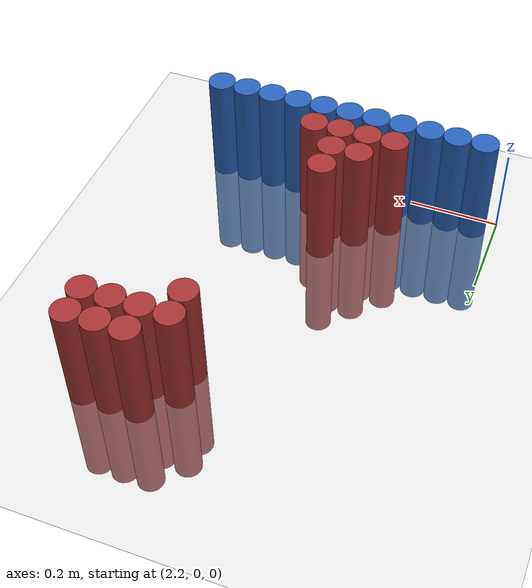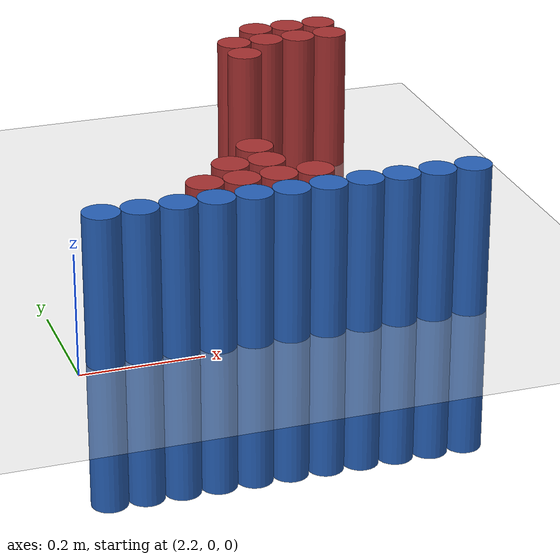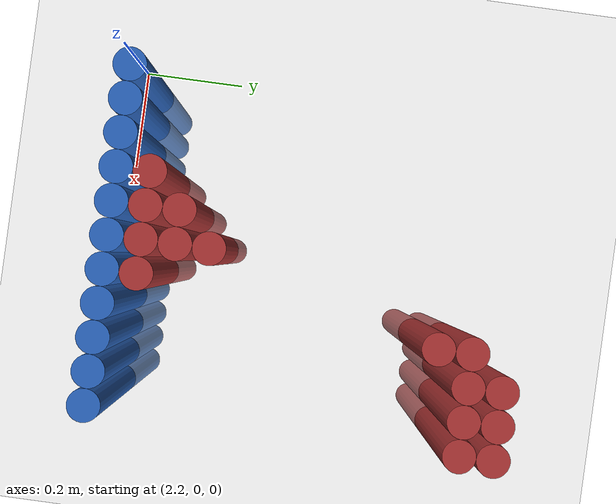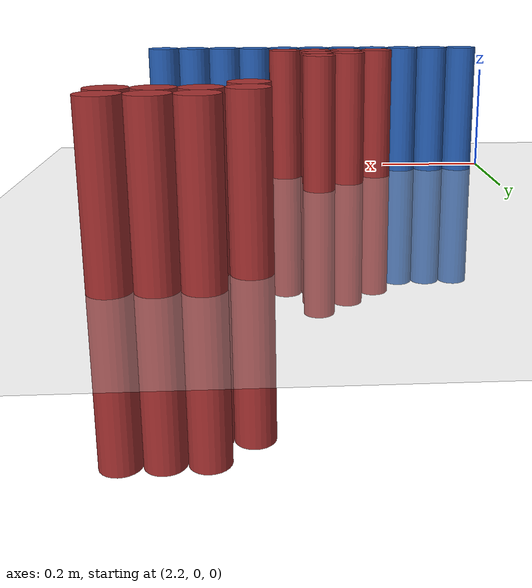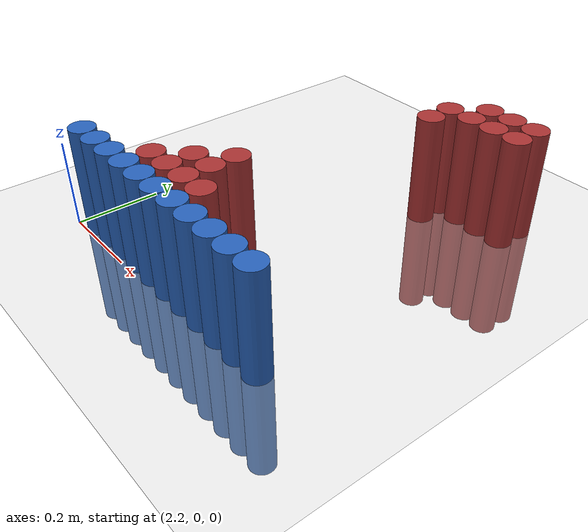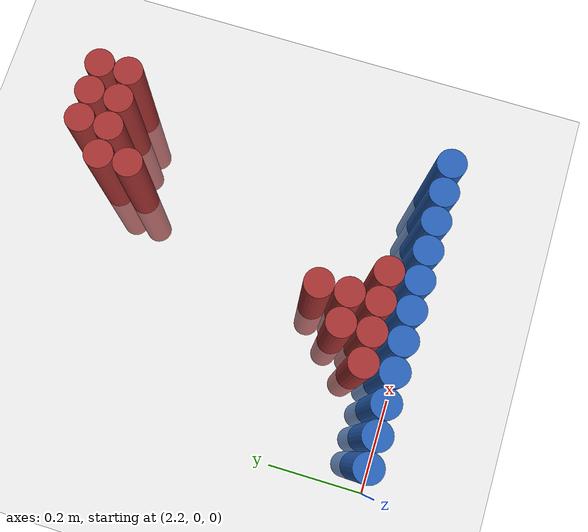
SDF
<sdf version="1.6">
 <world name="default">
  <model name="ground_plane">
   <static>1</static>
   <link name="link">
    <collision name="collision">
     <geometry><plane><normal>0 0 1</normal><size>100 100</size></plane></geometry>
     <surface><friction><ode><mu>100</mu><mu2>50</mu2></ode></friction></surface>
    </collision>
    <visual name="visual">
     <cast_shadows>0</cast_shadows>
     <geometry><plane><normal>0 0 1</normal><size>100 100</size></plane></geometry>
     <material>
      <script><uri>file://media/materials/scripts/gazebo.material</uri><name>Gazebo/Grey</name></script>
     </material>
    </visual>
   </link>
  </model>
  <model name="unit_cylinder_155">
   <static>1</static>
   <pose>2.730000 0.750000 0.000000 0.000000 0.000000 0.000000</pose>
   <link name="link">
    <inertial>
     <mass>1</mass>
     <inertia><ixx>0.145833</ixx><ixy>0</ixy><ixz>0</ixz><iyy>0.145833</iyy><iyz>0</iyz><izz>0.125</izz></inertia>
    </inertial>
    <collision name="collision">
     <geometry><cylinder><radius>0.030000</radius><length>0.5</length></cylinder></geometry>
    </collision>
    <visual name="visual">
     <geometry><cylinder><radius>0.030000</radius><length>0.5</length></cylinder></geometry>
     <material>
      <ambient>0.648000 0.192000 0.192000 1</ambient>
      <diffuse>0.648000 0.192000 0.192000 1</diffuse>
     </material>
     <material>
      <script><name>Gazebo/Grey</name><uri>file://media/materials/scripts/gazebo.material</uri></script>
     </material>
    </visual>
   </link>
  </model>
  <model name="unit_cylinder_156">
   <static>1</static>
   <pose>2.790000 0.750000 0.000000 0.000000 0.000000 0.000000</pose>
   <link name="link">
    <inertial>
     <mass>1</mass>
     <inertia><ixx>0.145833</ixx><ixy>0</ixy><ixz>0</ixz><iyy>0.145833</iyy><iyz>0</iyz><izz>0.125</izz></inertia>
    </inertial>
    <collision name="collision">
     <geometry><cylinder><radius>0.030000</radius><length>0.5</length></cylinder></geometry>
    </collision>
    <visual name="visual">
     <geometry><cylinder><radius>0.030000</radius><length>0.5</length></cylinder></geometry>
     <material>
      <ambient>0.648000 0.192000 0.192000 1</ambient>
      <diffuse>0.648000 0.192000 0.192000 1</diffuse>
     </material>
     <material>
      <script><name>Gazebo/Grey</name><uri>file://media/materials/scripts/gazebo.material</uri></script>
     </material>
    </visual>
   </link>
  </model>
  <model name="unit_cylinder_157">
   <static>1</static>
   <pose>2.850000 0.750000 0.000000 0.000000 0.000000 0.000000</pose>
   <link name="link">
    <inertial>
     <mass>1</mass>
     <inertia><ixx>0.145833</ixx><ixy>0</ixy><ixz>0</ixz><iyy>0.145833</iyy><iyz>0</iyz><izz>0.125</izz></inertia>
    </inertial>
    <collision name="collision">
     <geometry><cylinder><radius>0.030000</radius><length>0.5</length></cylinder></geometry>
    </collision>
    <visual name="visual">
     <geometry><cylinder><radius>0.030000</radius><length>0.5</length></cylinder></geometry>
     <material>
      <ambient>0.648000 0.192000 0.192000 1</ambient>
      <diffuse>0.648000 0.192000 0.192000 1</diffuse>
     </material>
     <material>
      <script><name>Gazebo/Grey</name><uri>file://media/materials/scripts/gazebo.material</uri></script>
     </material>
    </visual>
   </link>
  </model>
  <model name="unit_cylinder_159">
   <static>1</static>
   <pose>2.670000 0.690000 0.000000 0.000000 0.000000 0.000000</pose>
   <link name="link">
    <inertial>
     <mass>1</mass>
     <inertia><ixx>0.145833</ixx><ixy>0</ixy><ixz>0</ixz><iyy>0.145833</iyy><iyz>0</iyz><izz>0.125</izz></inertia>
    </inertial>
    <collision name="collision">
     <geometry><cylinder><radius>0.030000</radius><length>0.5</length></cylinder></geometry>
    </collision>
    <visual name="visual">
     <geometry><cylinder><radius>0.030000</radius><length>0.5</length></cylinder></geometry>
     <material>
      <ambient>0.648000 0.192000 0.192000 1</ambient>
      <diffuse>0.648000 0.192000 0.192000 1</diffuse>
     </material>
     <material>
      <script><name>Gazebo/Grey</name><uri>file://media/materials/scripts/gazebo.material</uri></script>
     </material>
    </visual>
   </link>
  </model>
  <model name="unit_cylinder_160">
   <static>1</static>
   <pose>2.730000 0.690000 0.000000 0.000000 0.000000 0.000000</pose>
   <link name="link">
    <inertial>
     <mass>1</mass>
     <inertia><ixx>0.145833</ixx><ixy>0</ixy><ixz>0</ixz><iyy>0.145833</iyy><iyz>0</iyz><izz>0.125</izz></inertia>
    </inertial>
    <collision name="collision">
     <geometry><cylinder><radius>0.030000</radius><length>0.5</length></cylinder></geometry>
    </collision>
    <visual name="visual">
     <geometry><cylinder><radius>0.030000</radius><length>0.5</length></cylinder></geometry>
     <material>
      <ambient>0.648000 0.192000 0.192000 1</ambient>
      <diffuse>0.648000 0.192000 0.192000 1</diffuse>
     </material>
     <material>
      <script><name>Gazebo/Grey</name><uri>file://media/materials/scripts/gazebo.material</uri></script>
     </material>
    </visual>
   </link>
  </model>
  <model name="unit_cylinder_161">
   <static>1</static>
   <pose>2.790000 0.690000 0.000000 0.000000 0.000000 0.000000</pose>
   <link name="link">
    <inertial>
     <mass>1</mass>
     <inertia><ixx>0.145833</ixx><ixy>0</ixy><ixz>0</ixz><iyy>0.145833</iyy><iyz>0</iyz><izz>0.125</izz></inertia>
    </inertial>
    <collision name="collision">
     <geometry><cylinder><radius>0.030000</radius><length>0.5</length></cylinder></geometry>
    </collision>
    <visual name="visual">
     <geometry><cylinder><radius>0.030000</radius><length>0.5</length></cylinder></geometry>
     <material>
      <ambient>0.648000 0.192000 0.192000 1</ambient>
      <diffuse>0.648000 0.192000 0.192000 1</diffuse>
     </material>
     <material>
      <script><name>Gazebo/Grey</name><uri>file://media/materials/scripts/gazebo.material</uri></script>
     </material>
    </visual>
   </link>
  </model>
  <model name="unit_cylinder_162">
   <static>1</static>
   <pose>2.850000 0.690000 0.000000 0.000000 0.000000 0.000000</pose>
   <link name="link">
    <inertial>
     <mass>1</mass>
     <inertia><ixx>0.145833</ixx><ixy>0</ixy><ixz>0</ixz><iyy>0.145833</iyy><iyz>0</iyz><izz>0.125</izz></inertia>
    </inertial>
    <collision name="collision">
     <geometry><cylinder><radius>0.030000</radius><length>0.5</length></cylinder></geometry>
    </collision>
    <visual name="visual">
     <geometry><cylinder><radius>0.030000</radius><length>0.5</length></cylinder></geometry>
     <material>
      <ambient>0.648000 0.192000 0.192000 1</ambient>
      <diffuse>0.648000 0.192000 0.192000 1</diffuse>
     </material>
     <material>
      <script><name>Gazebo/Grey</name><uri>file://media/materials/scripts/gazebo.material</uri></script>
     </material>
    </visual>
   </link>
  </model>
  <model name="unit_cylinder_163">
   <static>1</static>
   <pose>2.670000 0.630000 0.000000 0.000000 0.000000 0.000000</pose>
   <link name="link">
    <inertial>
     <mass>1</mass>
     <inertia><ixx>0.145833</ixx><ixy>0</ixy><ixz>0</ixz><iyy>0.145833</iyy><iyz>0</iyz><izz>0.125</izz></inertia>
    </inertial>
    <collision name="collision">
     <geometry><cylinder><radius>0.030000</radius><length>0.5</length></cylinder></geometry>
    </collision>
    <visual name="visual">
     <geometry><cylinder><radius>0.030000</radius><length>0.5</length></cylinder></geometry>
     <material>
      <ambient>0.648000 0.192000 0.192000 1</ambient>
      <diffuse>0.648000 0.192000 0.192000 1</diffuse>
     </material>
     <material>
      <script><name>Gazebo/Grey</name><uri>file://media/materials/scripts/gazebo.material</uri></script>
     </material>
    </visual>
   </link>
  </model>
  <model name="unit_cylinder_164">
   <static>1</static>
   <pose>2.550000 0.210000 0.000000 0.000000 0.000000 0.000000</pose>
   <link name="link">
    <inertial>
     <mass>1</mass>
     <inertia><ixx>0.145833</ixx><ixy>0</ixy><ixz>0</ixz><iyy>0.145833</iyy><iyz>0</iyz><izz>0.125</izz></inertia>
    </inertial>
    <collision name="collision">
     <geometry><cylinder><radius>0.030000</radius><length>0.5</length></cylinder></geometry>
    </collision>
    <visual name="visual">
     <geometry><cylinder><radius>0.030000</radius><length>0.5</length></cylinder></geometry>
     <material>
      <ambient>0.648000 0.192000 0.192000 1</ambient>
      <diffuse>0.648000 0.192000 0.192000 1</diffuse>
     </material>
     <material>
      <script><name>Gazebo/Grey</name><uri>file://media/materials/scripts/gazebo.material</uri></script>
     </material>
    </visual>
   </link>
  </model>
  <model name="unit_cylinder_166">
   <static>1</static>
   <pose>2.490000 0.150000 0.000000 0.000000 0.000000 0.000000</pose>
   <link name="link">
    <inertial>
     <mass>1</mass>
     <inertia><ixx>0.145833</ixx><ixy>0</ixy><ixz>0</ixz><iyy>0.145833</iyy><iyz>0</iyz><izz>0.125</izz></inertia>
    </inertial>
    <collision name="collision">
     <geometry><cylinder><radius>0.030000</radius><length>0.5</length></cylinder></geometry>
    </collision>
    <visual name="visual">
     <geometry><cylinder><radius>0.030000</radius><length>0.5</length></cylinder></geometry>
     <material>
      <ambient>0.648000 0.192000 0.192000 1</ambient>
      <diffuse>0.648000 0.192000 0.192000 1</diffuse>
     </material>
     <material>
      <script><name>Gazebo/Grey</name><uri>file://media/materials/scripts/gazebo.material</uri></script>
     </material>
    </visual>
   </link>
  </model>
  <model name="unit_cylinder_167">
   <static>1</static>
   <pose>2.550000 0.150000 0.000000 0.000000 0.000000 0.000000</pose>
   <link name="link">
    <inertial>
     <mass>1</mass>
     <inertia><ixx>0.145833</ixx><ixy>0</ixy><ixz>0</ixz><iyy>0.145833</iyy><iyz>0</iyz><izz>0.125</izz></inertia>
    </inertial>
    <collision name="collision">
     <geometry><cylinder><radius>0.030000</radius><length>0.5</length></cylinder></geometry>
    </collision>
    <visual name="visual">
     <geometry><cylinder><radius>0.030000</radius><length>0.5</length></cylinder></geometry>
     <material>
      <ambient>0.648000 0.192000 0.192000 1</ambient>
      <diffuse>0.648000 0.192000 0.192000 1</diffuse>
     </material>
     <material>
      <script><name>Gazebo/Grey</name><uri>file://media/materials/scripts/gazebo.material</uri></script>
     </material>
    </visual>
   </link>
  </model>
  <model name="unit_cylinder_173">
   <static>1</static>
   <pose>2.430000 0.090000 0.000000 0.000000 0.000000 0.000000</pose>
   <link name="link">
    <inertial>
     <mass>1</mass>
     <inertia><ixx>0.145833</ixx><ixy>0</ixy><ixz>0</ixz><iyy>0.145833</iyy><iyz>0</iyz><izz>0.125</izz></inertia>
    </inertial>
    <collision name="collision">
     <geometry><cylinder><radius>0.030000</radius><length>0.5</length></cylinder></geometry>
    </collision>
    <visual name="visual">
     <geometry><cylinder><radius>0.030000</radius><length>0.5</length></cylinder></geometry>
     <material>
      <ambient>0.648000 0.192000 0.192000 1</ambient>
      <diffuse>0.648000 0.192000 0.192000 1</diffuse>
     </material>
     <material>
      <script><name>Gazebo/Grey</name><uri>file://media/materials/scripts/gazebo.material</uri></script>
     </material>
    </visual>
   </link>
  </model>
  <model name="unit_cylinder_174">
   <static>1</static>
   <pose>2.490000 0.090000 0.000000 0.000000 0.000000 0.000000</pose>
   <link name="link">
    <inertial>
     <mass>1</mass>
     <inertia><ixx>0.145833</ixx><ixy>0</ixy><ixz>0</ixz><iyy>0.145833</iyy><iyz>0</iyz><izz>0.125</izz></inertia>
    </inertial>
    <collision name="collision">
     <geometry><cylinder><radius>0.030000</radius><length>0.5</length></cylinder></geometry>
    </collision>
    <visual name="visual">
     <geometry><cylinder><radius>0.030000</radius><length>0.5</length></cylinder></geometry>
     <material>
      <ambient>0.648000 0.192000 0.192000 1</ambient>
      <diffuse>0.648000 0.192000 0.192000 1</diffuse>
     </material>
     <material>
      <script><name>Gazebo/Grey</name><uri>file://media/materials/scripts/gazebo.material</uri></script>
     </material>
    </visual>
   </link>
  </model>
  <model name="unit_cylinder_175">
   <static>1</static>
   <pose>2.550000 0.090000 0.000000 0.000000 0.000000 0.000000</pose>
   <link name="link">
    <inertial>
     <mass>1</mass>
     <inertia><ixx>0.145833</ixx><ixy>0</ixy><ixz>0</ixz><iyy>0.145833</iyy><iyz>0</iyz><izz>0.125</izz></inertia>
    </inertial>
    <collision name="collision">
     <geometry><cylinder><radius>0.030000</radius><length>0.5</length></cylinder></geometry>
    </collision>
    <visual name="visual">
     <geometry><cylinder><radius>0.030000</radius><length>0.5</length></cylinder></geometry>
     <material>
      <ambient>0.648000 0.192000 0.192000 1</ambient>
      <diffuse>0.648000 0.192000 0.192000 1</diffuse>
     </material>
     <material>
      <script><name>Gazebo/Grey</name><uri>file://media/materials/scripts/gazebo.material</uri></script>
     </material>
    </visual>
   </link>
  </model>
  <model name="unit_cylinder_176">
   <static>1</static>
   <pose>2.610000 0.090000 0.000000 0.000000 0.000000 0.000000</pose>
   <link name="link">
    <inertial>
     <mass>1</mass>
     <inertia><ixx>0.145833</ixx><ixy>0</ixy><ixz>0</ixz><iyy>0.145833</iyy><iyz>0</iyz><izz>0.125</izz></inertia>
    </inertial>
    <collision name="collision">
     <geometry><cylinder><radius>0.030000</radius><length>0.5</length></cylinder></geometry>
    </collision>
    <visual name="visual">
     <geometry><cylinder><radius>0.030000</radius><length>0.5</length></cylinder></geometry>
     <material>
      <ambient>0.648000 0.192000 0.192000 1</ambient>
      <diffuse>0.648000 0.192000 0.192000 1</diffuse>
     </material>
     <material>
      <script><name>Gazebo/Grey</name><uri>file://media/materials/scripts/gazebo.material</uri></script>
     </material>
    </visual>
   </link>
  </model>
  <model name="unit_cylinder_187">
   <static>1</static>
   <pose>2.250000 0.030000 0.000000 0.000000 0.000000 0.000000</pose>
   <link name="link">
    <inertial>
     <mass>1</mass>
     <inertia><ixx>0.145833</ixx><ixy>0</ixy><ixz>0</ixz><iyy>0.145833</iyy><iyz>0</iyz><izz>0.125</izz></inertia>
    </inertial>
    <collision name="collision">
     <geometry><cylinder><radius>0.030000</radius><length>0.5</length></cylinder></geometry>
    </collision>
    <visual name="visual">
     <geometry><cylinder><radius>0.030000</radius><length>0.5</length></cylinder></geometry>
     <material>
      <ambient>0.152000 0.379000 0.720000 1</ambient>
      <diffuse>0.152000 0.379000 0.720000 1</diffuse>
     </material>
     <material>
      <script><name>Gazebo/Grey</name><uri>file://media/materials/scripts/gazebo.material</uri></script>
     </material>
    </visual>
   </link>
  </model>
  <model name="unit_cylinder_188">
   <static>1</static>
   <pose>2.310000 0.030000 0.000000 0.000000 0.000000 0.000000</pose>
   <link name="link">
    <inertial>
     <mass>1</mass>
     <inertia><ixx>0.145833</ixx><ixy>0</ixy><ixz>0</ixz><iyy>0.145833</iyy><iyz>0</iyz><izz>0.125</izz></inertia>
    </inertial>
    <collision name="collision">
     <geometry><cylinder><radius>0.030000</radius><length>0.5</length></cylinder></geometry>
    </collision>
    <visual name="visual">
     <geometry><cylinder><radius>0.030000</radius><length>0.5</length></cylinder></geometry>
     <material>
      <ambient>0.152000 0.379000 0.720000 1</ambient>
      <diffuse>0.152000 0.379000 0.720000 1</diffuse>
     </material>
     <material>
      <script><name>Gazebo/Grey</name><uri>file://media/materials/scripts/gazebo.material</uri></script>
     </material>
    </visual>
   </link>
  </model>
  <model name="unit_cylinder_189">
   <static>1</static>
   <pose>2.370000 0.030000 0.000000 0.000000 0.000000 0.000000</pose>
   <link name="link">
    <inertial>
     <mass>1</mass>
     <inertia><ixx>0.145833</ixx><ixy>0</ixy><ixz>0</ixz><iyy>0.145833</iyy><iyz>0</iyz><izz>0.125</izz></inertia>
    </inertial>
    <collision name="collision">
     <geometry><cylinder><radius>0.030000</radius><length>0.5</length></cylinder></geometry>
    </collision>
    <visual name="visual">
     <geometry><cylinder><radius>0.030000</radius><length>0.5</length></cylinder></geometry>
     <material>
      <ambient>0.152000 0.379000 0.720000 1</ambient>
      <diffuse>0.152000 0.379000 0.720000 1</diffuse>
     </material>
     <material>
      <script><name>Gazebo/Grey</name><uri>file://media/materials/scripts/gazebo.material</uri></script>
     </material>
    </visual>
   </link>
  </model>
  <model name="unit_cylinder_190">
   <static>1</static>
   <pose>2.430000 0.030000 0.000000 0.000000 0.000000 0.000000</pose>
   <link name="link">
    <inertial>
     <mass>1</mass>
     <inertia><ixx>0.145833</ixx><ixy>0</ixy><ixz>0</ixz><iyy>0.145833</iyy><iyz>0</iyz><izz>0.125</izz></inertia>
    </inertial>
    <collision name="collision">
     <geometry><cylinder><radius>0.030000</radius><length>0.5</length></cylinder></geometry>
    </collision>
    <visual name="visual">
     <geometry><cylinder><radius>0.030000</radius><length>0.5</length></cylinder></geometry>
     <material>
      <ambient>0.152000 0.379000 0.720000 1</ambient>
      <diffuse>0.152000 0.379000 0.720000 1</diffuse>
     </material>
     <material>
      <script><name>Gazebo/Grey</name><uri>file://media/materials/scripts/gazebo.material</uri></script>
     </material>
    </visual>
   </link>
  </model>
  <model name="unit_cylinder_191">
   <static>1</static>
   <pose>2.490000 0.030000 0.000000 0.000000 0.000000 0.000000</pose>
   <link name="link">
    <inertial>
     <mass>1</mass>
     <inertia><ixx>0.145833</ixx><ixy>0</ixy><ixz>0</ixz><iyy>0.145833</iyy><iyz>0</iyz><izz>0.125</izz></inertia>
    </inertial>
    <collision name="collision">
     <geometry><cylinder><radius>0.030000</radius><length>0.5</length></cylinder></geometry>
    </collision>
    <visual name="visual">
     <geometry><cylinder><radius>0.030000</radius><length>0.5</length></cylinder></geometry>
     <material>
      <ambient>0.152000 0.379000 0.720000 1</ambient>
      <diffuse>0.152000 0.379000 0.720000 1</diffuse>
     </material>
     <material>
      <script><name>Gazebo/Grey</name><uri>file://media/materials/scripts/gazebo.material</uri></script>
     </material>
    </visual>
   </link>
  </model>
  <model name="unit_cylinder_192">
   <static>1</static>
   <pose>2.550000 0.030000 0.000000 0.000000 0.000000 0.000000</pose>
   <link name="link">
    <inertial>
     <mass>1</mass>
     <inertia><ixx>0.145833</ixx><ixy>0</ixy><ixz>0</ixz><iyy>0.145833</iyy><iyz>0</iyz><izz>0.125</izz></inertia>
    </inertial>
    <collision name="collision">
     <geometry><cylinder><radius>0.030000</radius><length>0.5</length></cylinder></geometry>
    </collision>
    <visual name="visual">
     <geometry><cylinder><radius>0.030000</radius><length>0.5</length></cylinder></geometry>
     <material>
      <ambient>0.152000 0.379000 0.720000 1</ambient>
      <diffuse>0.152000 0.379000 0.720000 1</diffuse>
     </material>
     <material>
      <script><name>Gazebo/Grey</name><uri>file://media/materials/scripts/gazebo.material</uri></script>
     </material>
    </visual>
   </link>
  </model>
  <model name="unit_cylinder_193">
   <static>1</static>
   <pose>2.610000 0.030000 0.000000 0.000000 0.000000 0.000000</pose>
   <link name="link">
    <inertial>
     <mass>1</mass>
     <inertia><ixx>0.145833</ixx><ixy>0</ixy><ixz>0</ixz><iyy>0.145833</iyy><iyz>0</iyz><izz>0.125</izz></inertia>
    </inertial>
    <collision name="collision">
     <geometry><cylinder><radius>0.030000</radius><length>0.5</length></cylinder></geometry>
    </collision>
    <visual name="visual">
     <geometry><cylinder><radius>0.030000</radius><length>0.5</length></cylinder></geometry>
     <material>
      <ambient>0.152000 0.379000 0.720000 1</ambient>
      <diffuse>0.152000 0.379000 0.720000 1</diffuse>
     </material>
     <material>
      <script><name>Gazebo/Grey</name><uri>file://media/materials/scripts/gazebo.material</uri></script>
     </material>
    </visual>
   </link>
  </model>
  <model name="unit_cylinder_194">
   <static>1</static>
   <pose>2.670000 0.030000 0.000000 0.000000 0.000000 0.000000</pose>
   <link name="link">
    <inertial>
     <mass>1</mass>
     <inertia><ixx>0.145833</ixx><ixy>0</ixy><ixz>0</ixz><iyy>0.145833</iyy><iyz>0</iyz><izz>0.125</izz></inertia>
    </inertial>
    <collision name="collision">
     <geometry><cylinder><radius>0.030000</radius><length>0.5</length></cylinder></geometry>
    </collision>
    <visual name="visual">
     <geometry><cylinder><radius>0.030000</radius><length>0.5</length></cylinder></geometry>
     <material>
      <ambient>0.152000 0.379000 0.720000 1</ambient>
      <diffuse>0.152000 0.379000 0.720000 1</diffuse>
     </material>
     <material>
      <script><name>Gazebo/Grey</name><uri>file://media/materials/scripts/gazebo.material</uri></script>
     </material>
    </visual>
   </link>
  </model>
  <model name="unit_cylinder_195">
   <static>1</static>
   <pose>2.730000 0.030000 0.000000 0.000000 0.000000 0.000000</pose>
   <link name="link">
    <inertial>
     <mass>1</mass>
     <inertia><ixx>0.145833</ixx><ixy>0</ixy><ixz>0</ixz><iyy>0.145833</iyy><iyz>0</iyz><izz>0.125</izz></inertia>
    </inertial>
    <collision name="collision">
     <geometry><cylinder><radius>0.030000</radius><length>0.5</length></cylinder></geometry>
    </collision>
    <visual name="visual">
     <geometry><cylinder><radius>0.030000</radius><length>0.5</length></cylinder></geometry>
     <material>
      <ambient>0.152000 0.379000 0.720000 1</ambient>
      <diffuse>0.152000 0.379000 0.720000 1</diffuse>
     </material>
     <material>
      <script><name>Gazebo/Grey</name><uri>file://media/materials/scripts/gazebo.material</uri></script>
     </material>
    </visual>
   </link>
  </model>
  <model name="unit_cylinder_196">
   <static>1</static>
   <pose>2.790000 0.030000 0.000000 0.000000 0.000000 0.000000</pose>
   <link name="link">
    <inertial>
     <mass>1</mass>
     <inertia><ixx>0.145833</ixx><ixy>0</ixy><ixz>0</ixz><iyy>0.145833</iyy><iyz>0</iyz><izz>0.125</izz></inertia>
    </inertial>
    <collision name="collision">
     <geometry><cylinder><radius>0.030000</radius><length>0.5</length></cylinder></geometry>
    </collision>
    <visual name="visual">
     <geometry><cylinder><radius>0.030000</radius><length>0.5</length></cylinder></geometry>
     <material>
      <ambient>0.152000 0.379000 0.720000 1</ambient>
      <diffuse>0.152000 0.379000 0.720000 1</diffuse>
     </material>
     <material>
      <script><name>Gazebo/Grey</name><uri>file://media/materials/scripts/gazebo.material</uri></script>
     </material>
    </visual>
   </link>
  </model>
  <model name="unit_cylinder_197">
   <static>1</static>
   <pose>2.850000 0.030000 0.000000 0.000000 0.000000 0.000000</pose>
   <link name="link">
    <inertial>
     <mass>1</mass>
     <inertia><ixx>0.145833</ixx><ixy>0</ixy><ixz>0</ixz><iyy>0.145833</iyy><iyz>0</iyz><izz>0.125</izz></inertia>
    </inertial>
    <collision name="collision">
     <geometry><cylinder><radius>0.030000</radius><length>0.5</length></cylinder></geometry>
    </collision>
    <visual name="visual">
     <geometry><cylinder><radius>0.030000</radius><length>0.5</length></cylinder></geometry>
     <material>
      <ambient>0.152000 0.379000 0.720000 1</ambient>
      <diffuse>0.152000 0.379000 0.720000 1</diffuse>
     </material>
     <material>
      <script><name>Gazebo/Grey</name><uri>file://media/materials/scripts/gazebo.material</uri></script>
     </material>
    </visual>
   </link>
  </model>
 </world>
</sdf>
